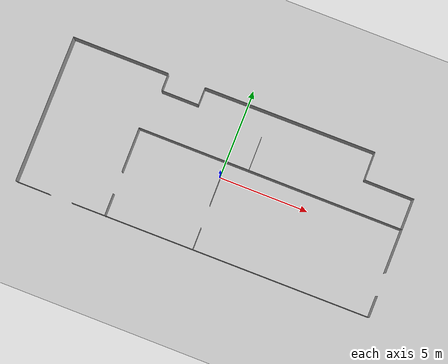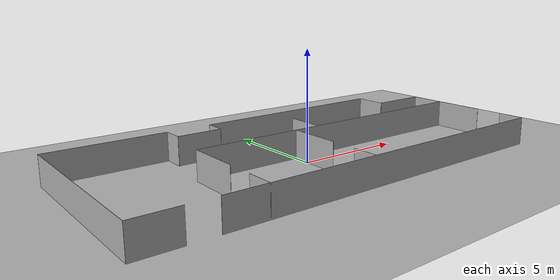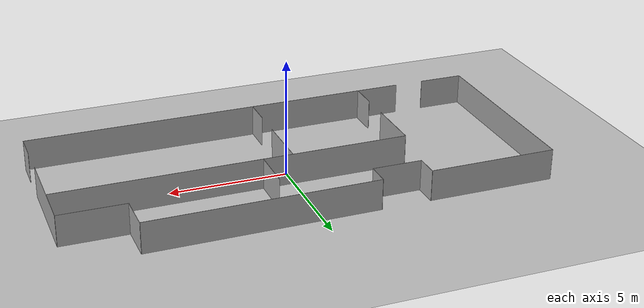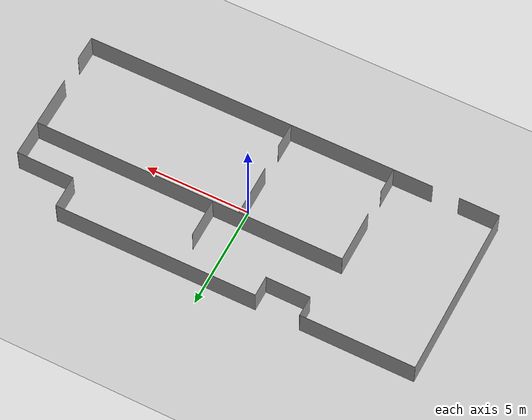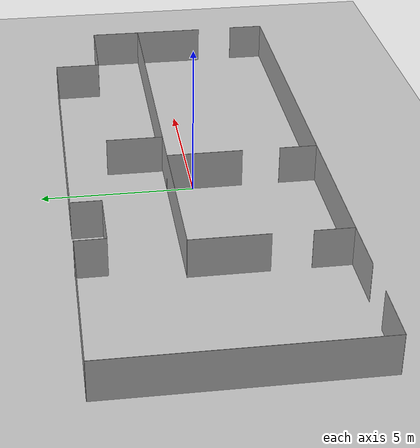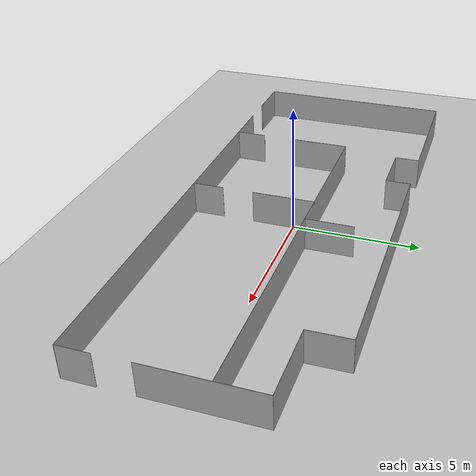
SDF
<sdf version='1.6'>
  <world name='default'>
    <include>
      <uri>model://ahg_apartment</uri>
      <name>apartment</name>
      <pose>0 0 0 0 0 0</pose>
    </include>
    <include>
      <uri>model://sun</uri>
    </include>
    <include>
      <uri>model://ground_plane</uri>
    </include>
    <gravity>0 0 -9.8</gravity>
    <magnetic_field>6e-06 2.3e-05 -4.2e-05</magnetic_field>
    <atmosphere type='adiabatic'/>
    <physics name='default_physics' default='0' type='ode'>
      <max_step_size>0.001</max_step_size>
      <real_time_factor>1</real_time_factor>
      <real_time_update_rate>1000</real_time_update_rate>
    </physics>
    <scene>
      <ambient>0.4 0.4 0.4 1</ambient>
      <background>0.7 0.7 0.7 1</background>
      <shadows>1</shadows>
    </scene>
    <spherical_coordinates>
      <surface_model>EARTH_WGS84</surface_model>
      <latitude_deg>0</latitude_deg>
      <longitude_deg>0</longitude_deg>
      <elevation>0</elevation>
      <heading_deg>0</heading_deg>
    </spherical_coordinates>
    <gui fullscreen='0'>
      <camera name='user_camera'>
        <pose frame=''>-3.49618 -17.106 26.617 0 0.921797 1.26012</pose>
        <view_controller>orbit</view_controller>
        <projection_type>perspective</projection_type>
      </camera>
    </gui>
  </world>
</sdf>

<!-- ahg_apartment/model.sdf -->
<sdf version='1.6'>
  <model name='ahg_apartment1'>
    <pose frame=''>-0.014919 0.013898 0 0 -0 0</pose>

    <!-- Wall 11 -->
    <link name='Wall_11_Bottom'>
      <collision name='Wall_11_Bottom_Collision'>
        <geometry>
          <box>
            <size>9.6682 0.01 1.3287375</size>
          </box>
        </geometry>
        <pose frame=''>0 0 1.25 0 -0 0</pose>
      </collision>
      <visual name='Wall_11_Bottom_Visual'>
        <pose frame=''>0 0 1.25 0 -0 0</pose>
        <geometry>
          <box>
            <size>9.6682 0.01 1.3287375</size>
          </box>
        </geometry>
        <material>
          <script>
            <uri>file://media/materials/scripts/gazebo.material</uri>
            <name>Gazebo/Grey</name>
          </script>
          <ambient>1 1 1 1</ambient>
        </material>
      </visual>
      <pose frame=''>2.36479 4.14145 -0.58563125 0 -0 0.003242</pose>
    </link>

    <link name='Wall_11_Top'>
      <collision name='Wall_11_Top_Collision'>
        <geometry>
          <box>
            <size>9.6682 0.01 1.3287375</size>
          </box>
        </geometry>
        <pose frame=''>0 0 1.25 0 -0 0</pose>
      </collision>
      <visual name='Wall_11_Top_Visual'>
        <pose frame=''>0 0 1.25 0 -0 0</pose>
        <geometry>
          <box>
            <size>9.6682 0.01 1.3287375</size>
          </box>
        </geometry>
        <material>
          <ambient>15 71 174 1</ambient>
        </material>
      </visual>
      <pose frame=''>2.36479 4.14145 0.74310625 0 -0 0.003242</pose>
    </link>

    <!-- Wall 12 -->
    <link name='Wall_12_Bottom'>
      <collision name='Wall_12_Bottom_Collision'>
        <geometry>
          <box>
            <size>1.57865 0.01 1.3287375</size>
          </box>
        </geometry>
        <pose frame=''>0 0 1.25 0 -0 0</pose>
      </collision>
      <visual name='Wall_12_Bottom_Visual'>
        <pose frame=''>0 0 1.25 0 -0 0</pose>
        <geometry>
          <box>
            <size>1.57865 0.01 1.3287375</size>
          </box>
        </geometry>
        <material>
          <script>
            <uri>file://media/materials/scripts/gazebo.material</uri>
            <name>Gazebo/Grey</name>
          </script>
          <ambient>1 1 1 1</ambient>
        </material>
      </visual>
      <pose frame=''>7.21714 3.37282 -0.58563125 0 0 -1.56019</pose>
    </link>

    <link name='Wall_12_Top'>
      <collision name='Wall_12_Top_Collision'>
        <geometry>
          <box>
            <size>1.57865 0.01 1.3287375</size>
          </box>
        </geometry>
        <pose frame=''>0 0 1.25 0 -0 0</pose>
      </collision>
      <visual name='Wall_12_Top_Visual'>
        <pose frame=''>0 0 1.25 0 -0 0</pose>
        <geometry>
          <box>
            <size>1.57865 0.01 1.3287375</size>
          </box>
        </geometry>
        <material>
          <ambient>15 71 174 1</ambient>
        </material>
      </visual>
      <pose frame=''>7.21714 3.37282 0.74310625 0 0 -1.56019</pose>
    </link>

    <!-- Wall 15 -->
    <link name='Wall_15_Bottom'>
      <collision name='Wall_15_Bottom_Collision'>
        <geometry>
          <box>
            <size>2.78102 0.01 1.3287375</size>
          </box>
        </geometry>
        <pose frame=''>0 0 1.25 0 -0 0</pose>
      </collision>
      <visual name='Wall_15_Bottom_Visual'>
        <pose frame=''>0 0 1.25 0 -0 0</pose>
        <geometry>
          <box>
            <size>2.78102 0.01 1.3287375</size>
          </box>
        </geometry>
        <material>
          <script>
            <uri>file://media/materials/scripts/gazebo.material</uri>
            <name>Gazebo/Grey</name>
          </script>
          <ambient>1 1 1 1</ambient>
        </material>
      </visual>
      <pose frame=''>8.61097 2.58077 -0.58563125 0 0 -0.005604</pose>
    </link>

    <link name='Wall_15_Top'>
      <collision name='Wall_15_Top_Collision'>
        <geometry>
          <box>
            <size>2.78102 0.01 1.3287375</size>
          </box>
        </geometry>
        <pose frame=''>0 0 1.25 0 -0 0</pose>
      </collision>
      <visual name='Wall_15_Top_Visual'>
        <pose frame=''>0 0 1.25 0 -0 0</pose>
        <geometry>
          <box>
            <size>2.78102 0.01 1.3287375</size>
          </box>
        </geometry>
        <material>
          <ambient>15 71 174 1</ambient>
        </material>
      </visual>
      <pose frame=''>8.61097 2.58077 0.74310625 0 0 -0.005604</pose>
    </link>

    <!-- Wall 16 -->
    <link name='Wall_16_Bottom'>
      <collision name='Wall_16_Bottom_Collision'>
        <geometry>
          <box>
            <size>4.19662 0.01 1.3287375</size>
          </box>
        </geometry>
        <pose frame=''>0 0 1.25 0 -0 0</pose>
      </collision>
      <visual name='Wall_16_Bottom_Visual'>
        <pose frame=''>0 0 1.25 0 -0 0</pose>
        <geometry>
          <box>
            <size>4.19662 0.01 1.3287375</size>
          </box>
        </geometry>
        <material>
          <script>
            <uri>file://media/materials/scripts/gazebo.material</uri>
            <name>Gazebo/Grey</name>
          </script>
          <ambient>1 1 1 1</ambient>
        </material>
      </visual>
      <pose frame=''>9.99989 0.479714 -0.58563125 0 0 -1.57325</pose>
    </link>

    <link name='Wall_16_Top'>
      <collision name='Wall_16_Top_Collision'>
        <geometry>
          <box>
            <size>4.19662 0.01 1.3287375</size>
          </box>
        </geometry>
        <pose frame=''>0 0 1.25 0 -0 0</pose>
      </collision>
      <visual name='Wall_16_Top_Visual'>
        <pose frame=''>0 0 1.25 0 -0 0</pose>
        <geometry>
          <box>
            <size>4.19662 0.01 1.3287375</size>
          </box>
        </geometry>
        <material>
          <ambient>15 71 174 1</ambient>
        </material>
      </visual>
      <pose frame=''>9.99989 0.479714 0.74310625 0 0 -1.57325</pose>
    </link>

    <!-- Wall 18 -->
    <link name='Wall_18_Bottom'>
      <collision name='Wall_18_Bottom_Collision'>
        <geometry>
          <box>
            <size>1.2318 0.01 1.3287375</size>
          </box>
        </geometry>
        <pose frame=''>0 0 1.25 0 -0 0</pose>
      </collision>
      <visual name='Wall_18_Bottom_Visual'>
        <pose frame=''>0 0 1.25 0 -0 0</pose>
        <geometry>
          <box>
            <size>1.2318 0.01 1.3287375</size>
          </box>
        </geometry>
        <material>
          <script>
            <uri>file://media/materials/scripts/gazebo.material</uri>
            <name>Gazebo/Grey</name>
          </script>
          <ambient>1 1 1 1</ambient>
        </material>
      </visual>
      <pose frame=''>10.0193 -3.51742 -0.58563125 0 0 -1.57439</pose>
    </link>

    <link name='Wall_18_Top'>
      <collision name='Wall_18_Top_Collision'>
        <geometry>
          <box>
            <size>1.2318 0.01 1.3287375</size>
          </box>
        </geometry>
        <pose frame=''>0 0 1.25 0 -0 0</pose>
      </collision>
      <visual name='Wall_18_Top_Visual'>
        <pose frame=''>0 0 1.25 0 -0 0</pose>
        <geometry>
          <box>
            <size>1.2318 0.01 1.3287375</size>
          </box>
        </geometry>
        <material>
          <ambient>15 71 174 1</ambient>
        </material>
      </visual>
      <pose frame=''>10.0193 -3.51742 0.74310625 0 0 -1.57439</pose>
    </link>

    <!-- Wall 19 -->
    <link name='Wall_19_Bottom'>
      <collision name='Wall_19_Bottom_Collision'>
        <geometry>
          <box>
            <size>16.8681 0.01 1.3287375</size>
          </box>
        </geometry>
        <pose frame=''>0 0 1.25 0 -0 0</pose>
      </collision>
      <visual name='Wall_19_Bottom_Visual'>
        <pose frame=''>0 0 1.25 0 -0 0</pose>
        <geometry>
          <box>
            <size>16.8681 0.01 1.3287375</size>
          </box>
        </geometry>
        <material>
          <script>
            <uri>file://media/materials/scripts/gazebo.material</uri>
            <name>Gazebo/Grey</name>
          </script>
          <ambient>1 1 1 1</ambient>
        </material>
      </visual>
      <pose frame=''>1.58828 -4.13952 -0.58563125 0 0 -3.14015</pose>
    </link>

    <link name='Wall_19_Top'>
      <collision name='Wall_19_Top_Collision'>
        <geometry>
          <box>
            <size>16.8681 0.01 1.3287375</size>
          </box>
        </geometry>
        <pose frame=''>0 0 1.25 0 -0 0</pose>
      </collision>
      <visual name='Wall_19_Top_Visual'>
        <pose frame=''>0 0 1.25 0 -0 0</pose>
        <geometry>
          <box>
            <size>16.8681 0.01 1.3287375</size>
          </box>
        </geometry>
        <material>
          <ambient>15 71 174 1</ambient>
        </material>
      </visual>
      <pose frame=''>1.58828 -4.13952 0.74310625 0 0 -3.14015</pose>
    </link>

    <!-- Wall 21 -->
    <link name='Wall_21_Bottom'>
      <collision name='Wall_21_Bottom_Collision'>
        <geometry>
          <box>
            <size>1.91841 0.01 1.3287375</size>
          </box>
        </geometry>
        <pose frame=''>0 0 1.25 0 -0 0</pose>
      </collision>
      <visual name='Wall_21_Bottom_Visual'>
        <pose frame=''>0 0 1.25 0 -0 0</pose>
        <geometry>
          <box>
            <size>1.91841 0.01 1.3287375</size>
          </box>
        </geometry>
        <material>
          <script>
            <uri>file://media/materials/scripts/gazebo.material</uri>
            <name>Gazebo/Grey</name>
          </script>
          <ambient>1 1 1 1</ambient>
        </material>
      </visual>
      <pose frame=''>-9.06728 -4.14723 -0.58563125 0 -0 3.13664</pose>
    </link>

    <link name='Wall_21_Top'>
      <collision name='Wall_21_Top_Collision'>
        <geometry>
          <box>
            <size>1.91841 0.01 1.3287375</size>
          </box>
        </geometry>
        <pose frame=''>0 0 1.25 0 -0 0</pose>
      </collision>
      <visual name='Wall_21_Top_Visual'>
        <pose frame=''>0 0 1.25 0 -0 0</pose>
        <geometry>
          <box>
            <size>1.91841 0.01 1.3287375</size>
          </box>
        </geometry>
        <material>
          <ambient>15 71 174 1</ambient>
        </material>
      </visual>
      <pose frame=''>-9.06728 -4.14723 0.74310625 0 -0 3.13664</pose>
    </link>

    <!-- Wall 22 -->
    <link name='Wall_22_Bottom'>
      <collision name='Wall_22_Bottom_Collision'>
        <geometry>
          <box>
            <size>8.2785 0.01 1.3287375</size>
          </box>
        </geometry>
        <pose frame=''>0 0 1.25 0 -0 0</pose>
      </collision>
      <visual name='Wall_22_Bottom_Visual'>
        <pose frame=''>0 0 1.25 0 -0 0</pose>
        <geometry>
          <box>
            <size>8.2785 0.01 1.3287375</size>
          </box>
        </geometry>
        <material>
          <script>
            <uri>file://media/materials/scripts/gazebo.material</uri>
            <name>Gazebo/Grey</name>
          </script>
          <ambient>1 1 1 1</ambient>
        </material>
      </visual>
      <pose frame=''>-10.002 -0.008293 -0.58563125 0 -0 1.56643</pose>
    </link>

    <link name='Wall_22_Top'>
      <collision name='Wall_22_Top_Collision'>
        <geometry>
          <box>
            <size>8.2785 0.01 1.3287375</size>
          </box>
        </geometry>
        <pose frame=''>0 0 1.25 0 -0 0</pose>
      </collision>
      <visual name='Wall_22_Top_Visual'>
        <pose frame=''>0 0 1.25 0 -0 0</pose>
        <geometry>
          <box>
            <size>8.2785 0.01 1.3287375</size>
          </box>
        </geometry>
        <material>
          <ambient>15 71 174 1</ambient>
        </material>
      </visual>
      <pose frame=''>-10.002 -0.008293 0.74310625 0 -0 1.56643</pose>
    </link>

    <!-- Wall 34 -->
    <link name='Wall_34_Bottom'>
      <collision name='Wall_34_Bottom_Collision'>
        <geometry>
          <box>
            <size>2.10809 0.01 1.3287375</size>
          </box>
        </geometry>
        <pose frame=''>0 0 1.25 0 -0 0</pose>
      </collision>
      <visual name='Wall_34_Bottom_Visual'>
        <pose frame=''>0 0 1.25 0 -0 0</pose>
        <geometry>
          <box>
            <size>2.10809 0.01 1.3287375</size>
          </box>
        </geometry>
        <material>
          <script>
            <uri>file://media/materials/scripts/gazebo.material</uri>
            <name>Gazebo/Grey</name>
          </script>
          <ambient>1 1 1 1</ambient>
        </material>
      </visual>
      <pose frame=''>-3.51618 3.14425 -0.58563125 0 0 -0.003415</pose>
    </link>

    <link name='Wall_34_Top'>
      <collision name='Wall_34_Top_Collision'>
        <geometry>
          <box>
            <size>2.10809 0.01 1.3287375</size>
          </box>
        </geometry>
        <pose frame=''>0 0 1.25 0 -0 0</pose>
      </collision>
      <visual name='Wall_34_Top_Visual'>
        <pose frame=''>0 0 1.25 0 -0 0</pose>
        <geometry>
          <box>
            <size>2.10809 0.01 1.3287375</size>
          </box>
        </geometry>
        <material>
          <ambient>15 71 174 1</ambient>
        </material>
      </visual>
      <pose frame=''>-3.51618 3.14425 0.74310625 0 0 -0.003415</pose>
    </link>

    <!-- Wall 4 -->
    <link name='Wall_4_Bottom'>
      <collision name='Wall_4_Bottom_Collision'>
        <geometry>
          <box>
            <size>5.41613 0.01 1.3287375</size>
          </box>
        </geometry>
        <pose frame=''>0 0 1.25 0 -0 0</pose>
      </collision>
      <visual name='Wall_4_Bottom_Visual'>
        <pose frame=''>0 0 1.25 0 -0 0</pose>
        <geometry>
          <box>
            <size>5.41613 0.01 1.3287375</size>
          </box>
        </geometry>
        <material>
          <script>
            <uri>file://media/materials/scripts/gazebo.material</uri>
            <name>Gazebo/Grey</name>
          </script>
          <ambient>1 1 1 1</ambient>
        </material>
      </visual>
      <pose frame=''>-7.28234 4.12511 -0.58563125 0 0 -0.0003</pose>
    </link>

    <link name='Wall_4_Top'>
      <collision name='Wall_4_Top_Collision'>
        <geometry>
          <box>
            <size>5.41613 0.01 1.3287375</size>
          </box>
        </geometry>
        <pose frame=''>0 0 1.25 0 -0 0</pose>
      </collision>
      <visual name='Wall_4_Top_Visual'>
        <pose frame=''>0 0 1.25 0 -0 0</pose>
        <geometry>
          <box>
            <size>5.41613 0.01 1.3287375</size>
          </box>
        </geometry>
        <material>
          <ambient>15 71 174 1</ambient>
        </material>
      </visual>
      <pose frame=''>-7.28234 4.12511 0.74310625 0 0 -0.0003</pose>
    </link>

    <!-- Wall 41 -->
    <link name='Wall_41_Bottom'>
      <collision name='Wall_41_Bottom_Collision'>
        <geometry>
          <box>
            <size>1.26357 0.01 1.3287375</size>
          </box>
        </geometry>
        <pose frame=''>0 0 1.25 0 -0 0</pose>
      </collision>
      <visual name='Wall_41_Bottom_Visual'>
        <pose frame=''>0 0 1.25 0 -0 0</pose>
        <geometry>
          <box>
            <size>1.26357 0.01 1.3287375</size>
          </box>
        </geometry>
        <material>
          <script>
            <uri>file://media/materials/scripts/gazebo.material</uri>
            <name>Gazebo/Grey</name>
          </script>
          <ambient>1 1 1 1</ambient>
        </material>
      </visual>
      <pose frame=''>-4.95628 -3.53036 -0.58563125 0 -0 1.56863</pose>
    </link>

    <link name='Wall_41_Top'>
      <collision name='Wall_41_Top_Collision'>
        <geometry>
          <box>
            <size>1.26357 0.01 1.3287375</size>
          </box>
        </geometry>
        <pose frame=''>0 0 1.25 0 -0 0</pose>
      </collision>
      <visual name='Wall_41_Top_Visual'>
        <pose frame=''>0 0 1.25 0 -0 0</pose>
        <geometry>
          <box>
            <size>1.26357 0.01 1.3287375</size>
          </box>
        </geometry>
        <material>
          <ambient>15 71 174 1</ambient>
        </material>
      </visual>
      <pose frame=''>-4.95628 -3.53036 0.74310625 0 -0 1.56863</pose>
    </link>

    <!-- Wall 46 -->
    <link name='Wall_46_Bottom'>
      <collision name='Wall_46_Bottom_Collision'>
        <geometry>
          <box>
            <size>2.51611 0.01 1.3287375</size>
          </box>
        </geometry>
        <pose frame=''>0 0 1.25 0 -0 0</pose>
      </collision>
      <visual name='Wall_46_Bottom_Visual'>
        <pose frame=''>0 0 1.25 0 -0 0</pose>
        <geometry>
          <box>
            <size>2.51611 0.01 1.3287375</size>
          </box>
        </geometry>
        <material>
          <script>
            <uri>file://media/materials/scripts/gazebo.material</uri>
            <name>Gazebo/Grey</name>
          </script>
          <ambient>1 1 1 1</ambient>
        </material>
      </visual>
      <pose frame=''>-4.95391 -0.395397 -0.58563125 0 -0 1.57146</pose>
    </link>

    <link name='Wall_46_Top'>
      <collision name='Wall_46_Top_Collision'>
        <geometry>
          <box>
            <size>2.51611 0.01 1.3287375</size>
          </box>
        </geometry>
        <pose frame=''>0 0 1.25 0 -0 0</pose>
      </collision>
      <visual name='Wall_46_Top_Visual'>
        <pose frame=''>0 0 1.25 0 -0 0</pose>
        <geometry>
          <box>
            <size>2.51611 0.01 1.3287375</size>
          </box>
        </geometry>
        <material>
          <ambient>15 71 174 1</ambient>
        </material>
      </visual>
      <pose frame=''>-4.95391 -0.395397 0.74310625 0 -0 1.57146</pose>
    </link>

    <!-- Wall 47 -->
    <link name='Wall_47_Bottom'>
      <collision name='Wall_47_Bottom_Collision'>
        <geometry>
          <box>
            <size>14.9335 0.01 1.3287375</size>
          </box>
        </geometry>
        <pose frame=''>0 0 1.25 0 -0 0</pose>
      </collision>
      <visual name='Wall_47_Bottom_Visual'>
        <pose frame=''>0 0 1.25 0 -0 0</pose>
        <geometry>
          <box>
            <size>14.9335 0.01 1.3287375</size>
          </box>
        </geometry>
        <material>
          <script>
            <uri>file://media/materials/scripts/gazebo.material</uri>
            <name>Gazebo/Grey</name>
          </script>
          <ambient>1 1 1 1</ambient>
        </material>
      </visual>
      <pose frame=''>2.51347 0.847509 -0.58563125 0 0 -0.001348</pose>
    </link>

    <link name='Wall_47_Top'>
      <collision name='Wall_47_Top_Collision'>
        <geometry>
          <box>
            <size>14.9335 0.01 1.3287375</size>
          </box>
        </geometry>
        <pose frame=''>0 0 1.25 0 -0 0</pose>
      </collision>
      <visual name='Wall_47_Top_Visual'>
        <pose frame=''>0 0 1.25 0 -0 0</pose>
        <geometry>
          <box>
            <size>14.9335 0.01 1.3287375</size>
          </box>
        </geometry>
        <material>
          <ambient>15 71 174 1</ambient>
        </material>
      </visual>
      <pose frame=''>2.51347 0.847509 0.74310625 0 0 -0.001348</pose>
    </link>

    <!-- Wall 49 -->
    <link name='Wall_49_Bottom'>
      <collision name='Wall_49_Bottom_Collision'>
        <geometry>
          <box>
            <size>1.244 0.01 1.3287375</size>
          </box>
        </geometry>
        <pose frame=''>0 0 1.25 0 -0 0</pose>
      </collision>
      <visual name='Wall_49_Bottom_Visual'>
        <pose frame=''>0 0 1.25 0 -0 0</pose>
        <geometry>
          <box>
            <size>1.244 0.01 1.3287375</size>
          </box>
        </geometry>
        <material>
          <script>
            <uri>file://media/materials/scripts/gazebo.material</uri>
            <name>Gazebo/Grey</name>
          </script>
          <ambient>1 1 1 1</ambient>
        </material>
      </visual>
      <pose frame=''>0.039193 -3.52411 -0.58563125 0 -0 1.5708</pose>
    </link>

    <link name='Wall_49_Top'>
      <collision name='Wall_49_Top_Collision'>
        <geometry>
          <box>
            <size>1.244 0.01 1.3287375</size>
          </box>
        </geometry>
        <pose frame=''>0 0 1.25 0 -0 0</pose>
      </collision>
      <visual name='Wall_49_Top_Visual'>
        <pose frame=''>0 0 1.25 0 -0 0</pose>
        <geometry>
          <box>
            <size>1.244 0.01 1.3287375</size>
          </box>
        </geometry>
        <material>
          <ambient>15 71 174 1</ambient>
        </material>
      </visual>
      <pose frame=''>0.039193 -3.52411 0.74310625 0 -0 1.5708</pose>
    </link>

    <!-- Wall 61 -->
    <link name='Wall_61_Bottom'>
      <collision name='Wall_61_Bottom_Collision'>
        <geometry>
          <box>
            <size>1.86489 0.01 1.3287375</size>
          </box>
        </geometry>
        <pose frame=''>0 0 1.25 0 -0 0</pose>
      </collision>
      <visual name='Wall_61_Bottom_Visual'>
        <pose frame=''>0 0 1.25 0 -0 0</pose>
        <geometry>
          <box>
            <size>1.86489 0.01 1.3287375</size>
          </box>
        </geometry>
        <material>
          <script>
            <uri>file://media/materials/scripts/gazebo.material</uri>
            <name>Gazebo/Grey</name>
          </script>
          <ambient>1 1 1 1</ambient>
        </material>
      </visual>
      <pose frame=''>1.29442 1.79697 -0.58563125 0 -0 1.57049</pose>
    </link>

    <link name='Wall_61_Top'>
      <collision name='Wall_61_Top_Collision'>
        <geometry>
          <box>
            <size>1.86489 0.01 1.3287375</size>
          </box>
        </geometry>
        <pose frame=''>0 0 1.25 0 -0 0</pose>
      </collision>
      <visual name='Wall_61_Top_Visual'>
        <pose frame=''>0 0 1.25 0 -0 0</pose>
        <geometry>
          <box>
            <size>1.86489 0.01 1.3287375</size>
          </box>
        </geometry>
        <material>
          <ambient>15 71 174 1</ambient>
        </material>
      </visual>
      <pose frame=''>1.29442 1.79697 0.74310625 0 -0 1.57049</pose>
    </link>

    <!-- Wall 65 -->
    <link name='Wall_65_Bottom'>
      <collision name='Wall_65_Bottom_Collision'>
        <geometry>
          <box>
            <size>0.998401 0.01 1.3287375</size>
          </box>
        </geometry>
        <pose frame=''>0 0 1.25 0 -0 0</pose>
      </collision>
      <visual name='Wall_65_Bottom_Visual'>
        <pose frame=''>0 0 1.25 0 -0 0</pose>
        <geometry>
          <box>
            <size>0.998401 0.01 1.3287375</size>
          </box>
        </geometry>
        <material>
          <script>
            <uri>file://media/materials/scripts/gazebo.material</uri>
            <name>Gazebo/Grey</name>
          </script>
          <ambient>1 1 1 1</ambient>
        </material>
      </visual>
      <pose frame=''>-2.4641 3.63485 -0.58563125 0 -0 1.57118</pose>
    </link>

    <link name='Wall_65_Top'>
      <collision name='Wall_65_Top_Collision'>
        <geometry>
          <box>
            <size>0.998401 0.01 1.3287375</size>
          </box>
        </geometry>
        <pose frame=''>0 0 1.25 0 -0 0</pose>
      </collision>
      <visual name='Wall_65_Top_Visual'>
        <pose frame=''>0 0 1.25 0 -0 0</pose>
        <geometry>
          <box>
            <size>0.998401 0.01 1.3287375</size>
          </box>
        </geometry>
        <material>
          <ambient>15 71 174 1</ambient>
        </material>
      </visual>
      <pose frame=''>-2.4641 3.63485 0.74310625 0 -0 1.57118</pose>
    </link>

    <!-- Wall 69 -->
    <link name='Wall_69_Bottom'>
      <collision name='Wall_69_Bottom_Collision'>
        <geometry>
          <box>
            <size>0.993206 0.01 1.3287375</size>
          </box>
        </geometry>
        <pose frame=''>0 0 1.25 0 -0 0</pose>
      </collision>
      <visual name='Wall_69_Bottom_Visual'>
        <pose frame=''>0 0 1.25 0 -0 0</pose>
        <geometry>
          <box>
            <size>0.993206 0.01 1.3287375</size>
          </box>
        </geometry>
        <material>
          <script>
            <uri>file://media/materials/scripts/gazebo.material</uri>
            <name>Gazebo/Grey</name>
          </script>
          <ambient>1 1 1 1</ambient>
        </material>
      </visual>
      <pose frame=''>-4.56795 3.63943 -0.58563125 0 -0 1.57351</pose>
    </link>

    <link name='Wall_69_Top'>
      <collision name='Wall_69_Top_Collision'>
        <geometry>
          <box>
            <size>0.993206 0.01 1.3287375</size>
          </box>
        </geometry>
        <pose frame=''>0 0 1.25 0 -0 0</pose>
      </collision>
      <visual name='Wall_69_Top_Visual'>
        <pose frame=''>0 0 1.25 0 -0 0</pose>
        <geometry>
          <box>
            <size>0.993206 0.01 1.3287375</size>
          </box>
        </geometry>
        <material>
          <ambient>15 71 174 1</ambient>
        </material>
      </visual>
      <pose frame=''>-4.56795 3.63943 0.74310625 0 -0 1.57351</pose>
    </link>

    <!-- Wall 71 -->
    <link name='Wall_71_Bottom'>
      <collision name='Wall_71_Bottom_Collision'>
        <geometry>
          <box>
            <size>2.51204 0.01 1.3287375</size>
          </box>
        </geometry>
        <pose frame=''>0 0 1.25 0 -0 0</pose>
      </collision>
      <visual name='Wall_71_Bottom_Visual'>
        <pose frame=''>0 0 1.25 0 -0 0</pose>
        <geometry>
          <box>
            <size>2.51204 0.01 1.3287375</size>
          </box>
        </geometry>
        <material>
          <script>
            <uri>file://media/materials/scripts/gazebo.material</uri>
            <name>Gazebo/Grey</name>
          </script>
          <ambient>1 1 1 1</ambient>
        </material>
      </visual>
      <pose frame=''>0.034149 -0.396524 -0.58563125 0 0 -1.56821</pose>
    </link>

    <link name='Wall_71_Top'>
      <collision name='Wall_71_Top_Collision'>
        <geometry>
          <box>
            <size>2.51204 0.01 1.3287375</size>
          </box>
        </geometry>
        <pose frame=''>0 0 1.25 0 -0 0</pose>
      </collision>
      <visual name='Wall_71_Top_Visual'>
        <pose frame=''>0 0 1.25 0 -0 0</pose>
        <geometry>
          <box>
            <size>2.51204 0.01 1.3287375</size>
          </box>
        </geometry>
        <material>
          <ambient>15 71 174 1</ambient>
        </material>
      </visual>
      <pose frame=''>0.034149 -0.396524 0.74310625 0 0 -1.56821</pose>
    </link>

    <static>1</static>
  </model>
</sdf>
